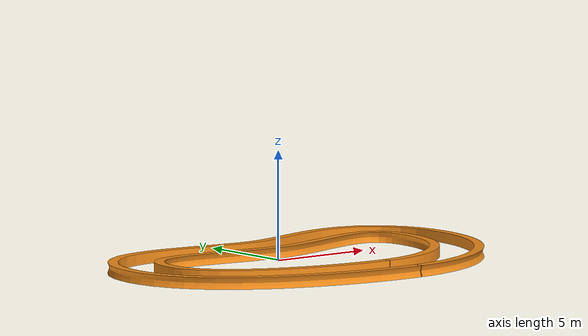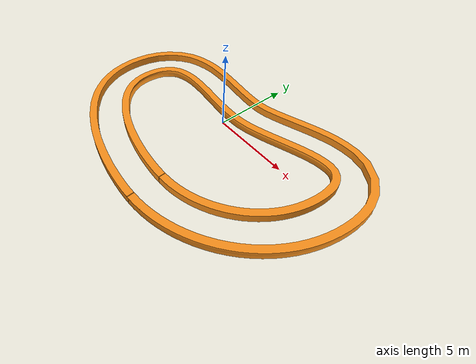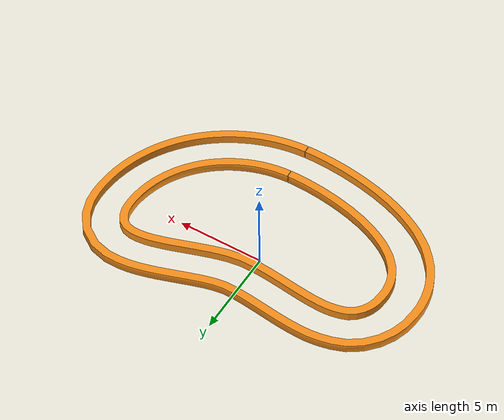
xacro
<?xml version="1.0"?>
<robot xmlns:xacro="http://www.ros.org/wiki/xacro" name="race_track">

<link name="race_track">

    <collision>
      <origin xyz="0 0 0" rpy="0 0 0"/>
      <geometry>
      <mesh filename="package://circuit/src/urdf/meshes/track_map.stl" scale="1 1 1"/>
      </geometry>
    </collision>

    <visual>
      <origin xyz="0 0 0" rpy="0 0 0"/>
      <geometry>
      <mesh filename="package://circuit/src/urdf/meshes/track_map.stl" scale="1 1 1"/>
      </geometry>
      <material name="orange"/>
    </visual>

    <inertial>
      <origin xyz="0 0 0" rpy="0 0 0"/>
      <mass value="1"/>
      <inertia
        ixx="1.0" ixy="0.0" ixz="0.0"
        iyy="1.0" iyz="0.0"
        izz="1.0"/>
    </inertial>
</link>

<link name="world"/>

  <joint name="fixed" type="fixed">
    <parent link="world"/>
    <child link="race_track"/>
  </joint>
</robot>
